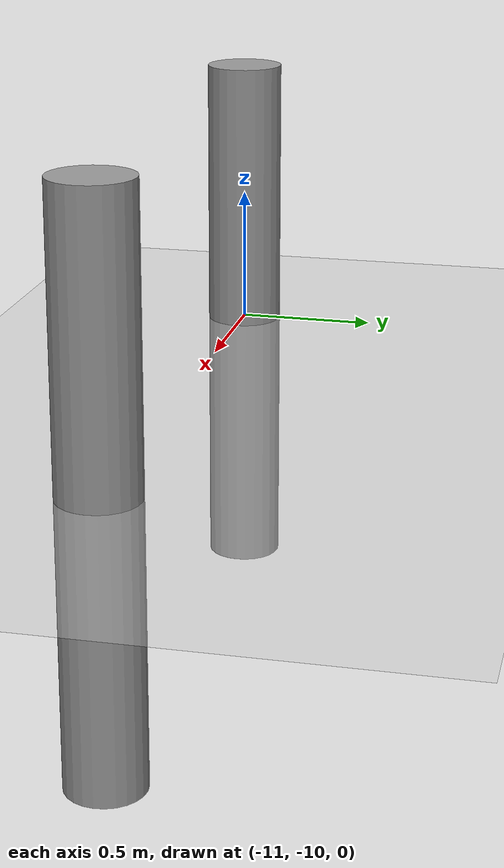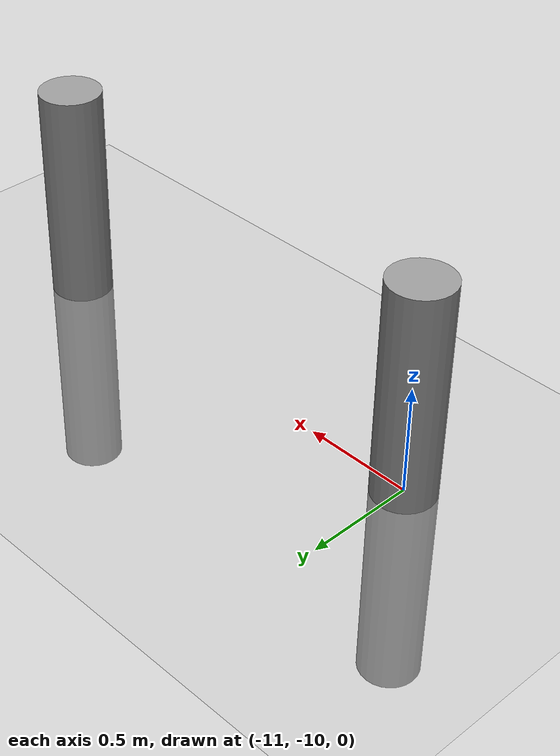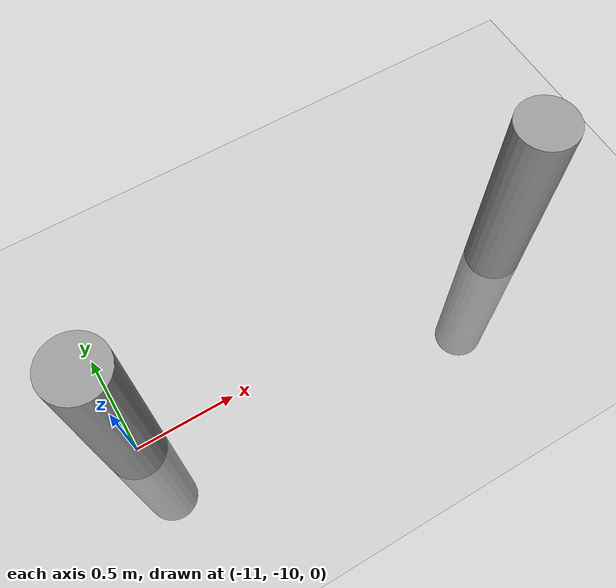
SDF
<sdf version="1.6">
 <world name="default">
  <model name="ground_plane">
   <static>1</static>
   <link name="link">
    <collision name="collision">
     <geometry><plane><normal>0 0 1</normal><size>100 100</size></plane></geometry>
     <surface><friction><ode><mu>100</mu><mu2>50</mu2></ode></friction></surface>
    </collision>
    <visual name="visual">
     <cast_shadows>0</cast_shadows>
     <geometry><plane><normal>0 0 1</normal><size>100 100</size></plane></geometry>
     <material>
      <script><uri>file://media/materials/scripts/gazebo.material</uri><name>Gazebo/Grey</name></script>
     </material>
    </visual>
   </link>
  </model>
  <model name="my_cylinder014_clone_19">
   <pose>-9 -10 0 0 -0 0</pose>
   <link name="my_cylinder014::link">
    <inertial>
     <mass>1</mass>
     <inertia><ixx>0.145833</ixx><ixy>0</ixy><ixz>0</ixz><iyy>0.145833</iyy><iyz>0</iyz><izz>0.125</izz></inertia>
    </inertial>
    <visual name="visual">
     <geometry><cylinder><radius>0.14</radius><length>2</length></cylinder></geometry>
     <material>
      <script><name>Gazebo/Grey</name><uri>file://media/materials/scripts/gazebo.material</uri></script>
      <ambient>0.3 0.3 0.3 1</ambient>
      <diffuse>0.7 0.7 0.7 1</diffuse>
      <specular>1 0.01 0.01 1</specular>
      <emissive>0 0 0 1</emissive>
      <shader type="vertex"><normal_map>__default__</normal_map></shader>
     </material>
    </visual>
    <collision name="collision">
     <geometry><cylinder><radius>0.14</radius><length>2</length></cylinder></geometry>
     <surface>
      <friction>
       <ode><mu>1</mu><mu2>1</mu2><fdir1>0 0 0</fdir1><slip1>0</slip1><slip2>0</slip2></ode>
       <torsional>
        <coefficient>1</coefficient>
        <patch_radius>0</patch_radius>
        <surface_radius>0</surface_radius>
        <use_patch_radius>1</use_patch_radius>
        <ode><slip>0</slip></ode>
       </torsional>
      </friction>
      <bounce><restitution_coefficient>0</restitution_coefficient><threshold>1e+06</threshold></bounce>
      <contact>
       <collide_without_contact>0</collide_without_contact>
       <collide_without_contact_bitmask>1</collide_without_contact_bitmask>
       <collide_bitmask>1</collide_bitmask>
       <ode>
        <soft_cfm>0</soft_cfm>
        <soft_erp>0.2</soft_erp>
        <kp>1e+13</kp>
        <kd>1</kd>
        <max_vel>0.01</max_vel>
        <min_depth>0</min_depth>
       </ode>
       <bullet>
        <split_impulse>1</split_impulse>
        <split_impulse_penetration_threshold>-0.01</split_impulse_penetration_threshold>
        <soft_cfm>0</soft_cfm>
        <soft_erp>0.2</soft_erp>
        <kp>1e+13</kp>
        <kd>1</kd>
       </bullet>
      </contact>
     </surface>
    </collision>
   </link>
   <static>1</static>
  </model>
  <model name="my_cylinder014_clone_19">
   <pose>-9 -10 0 0 -0 0</pose>
   <link name="my_cylinder014::link">
    <inertial>
     <mass>1</mass>
     <inertia><ixx>0.145833</ixx><ixy>0</ixy><ixz>0</ixz><iyy>0.145833</iyy><iyz>0</iyz><izz>0.125</izz></inertia>
    </inertial>
    <visual name="visual">
     <geometry><cylinder><radius>0.14</radius><length>2</length></cylinder></geometry>
     <material>
      <script><name>Gazebo/Grey</name><uri>file://media/materials/scripts/gazebo.material</uri></script>
      <ambient>0.3 0.3 0.3 1</ambient>
      <diffuse>0.7 0.7 0.7 1</diffuse>
      <specular>1 0.01 0.01 1</specular>
      <emissive>0 0 0 1</emissive>
      <shader type="vertex"><normal_map>__default__</normal_map></shader>
     </material>
    </visual>
    <collision name="collision">
     <geometry><cylinder><radius>0.14</radius><length>2</length></cylinder></geometry>
     <surface>
      <friction>
       <ode><mu>1</mu><mu2>1</mu2><fdir1>0 0 0</fdir1><slip1>0</slip1><slip2>0</slip2></ode>
       <torsional>
        <coefficient>1</coefficient>
        <patch_radius>0</patch_radius>
        <surface_radius>0</surface_radius>
        <use_patch_radius>1</use_patch_radius>
        <ode><slip>0</slip></ode>
       </torsional>
      </friction>
      <bounce><restitution_coefficient>0</restitution_coefficient><threshold>1e+06</threshold></bounce>
      <contact>
       <collide_without_contact>0</collide_without_contact>
       <collide_without_contact_bitmask>1</collide_without_contact_bitmask>
       <collide_bitmask>1</collide_bitmask>
       <ode>
        <soft_cfm>0</soft_cfm>
        <soft_erp>0.2</soft_erp>
        <kp>1e+13</kp>
        <kd>1</kd>
        <max_vel>0.01</max_vel>
        <min_depth>0</min_depth>
       </ode>
       <bullet>
        <split_impulse>1</split_impulse>
        <split_impulse_penetration_threshold>-0.01</split_impulse_penetration_threshold>
        <soft_cfm>0</soft_cfm>
        <soft_erp>0.2</soft_erp>
        <kp>1e+13</kp>
        <kd>1</kd>
       </bullet>
      </contact>
     </surface>
    </collision>
   </link>
   <static>1</static>
  </model>
  <model name="my_cylinder014_clone_18">
   <pose>-11 -10 0 0 -0 0</pose>
   <link name="my_cylinder014::link">
    <inertial>
     <mass>1</mass>
     <inertia><ixx>0.145833</ixx><ixy>0</ixy><ixz>0</ixz><iyy>0.145833</iyy><iyz>0</iyz><izz>0.125</izz></inertia>
    </inertial>
    <visual name="visual">
     <geometry><cylinder><radius>0.14</radius><length>2</length></cylinder></geometry>
     <material>
      <script><name>Gazebo/Grey</name><uri>file://media/materials/scripts/gazebo.material</uri></script>
      <ambient>0.3 0.3 0.3 1</ambient>
      <diffuse>0.7 0.7 0.7 1</diffuse>
      <specular>1 0.01 0.01 1</specular>
      <emissive>0 0 0 1</emissive>
      <shader type="vertex"><normal_map>__default__</normal_map></shader>
     </material>
    </visual>
    <collision name="collision">
     <geometry><cylinder><radius>0.14</radius><length>2</length></cylinder></geometry>
     <surface>
      <friction>
       <ode><mu>1</mu><mu2>1</mu2><fdir1>0 0 0</fdir1><slip1>0</slip1><slip2>0</slip2></ode>
       <torsional>
        <coefficient>1</coefficient>
        <patch_radius>0</patch_radius>
        <surface_radius>0</surface_radius>
        <use_patch_radius>1</use_patch_radius>
        <ode><slip>0</slip></ode>
       </torsional>
      </friction>
      <bounce><restitution_coefficient>0</restitution_coefficient><threshold>1e+06</threshold></bounce>
      <contact>
       <collide_without_contact>0</collide_without_contact>
       <collide_without_contact_bitmask>1</collide_without_contact_bitmask>
       <collide_bitmask>1</collide_bitmask>
       <ode>
        <soft_cfm>0</soft_cfm>
        <soft_erp>0.2</soft_erp>
        <kp>1e+13</kp>
        <kd>1</kd>
        <max_vel>0.01</max_vel>
        <min_depth>0</min_depth>
       </ode>
       <bullet>
        <split_impulse>1</split_impulse>
        <split_impulse_penetration_threshold>-0.01</split_impulse_penetration_threshold>
        <soft_cfm>0</soft_cfm>
        <soft_erp>0.2</soft_erp>
        <kp>1e+13</kp>
        <kd>1</kd>
       </bullet>
      </contact>
     </surface>
    </collision>
   </link>
   <static>1</static>
  </model>
 </world>
</sdf>
